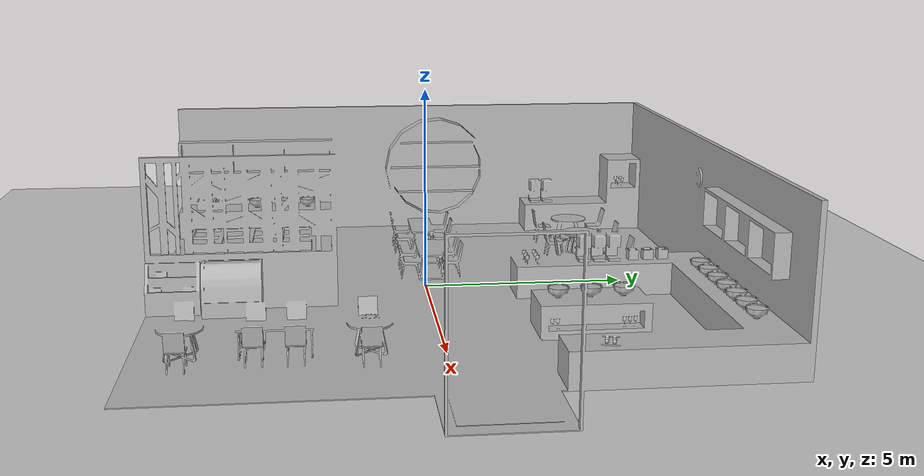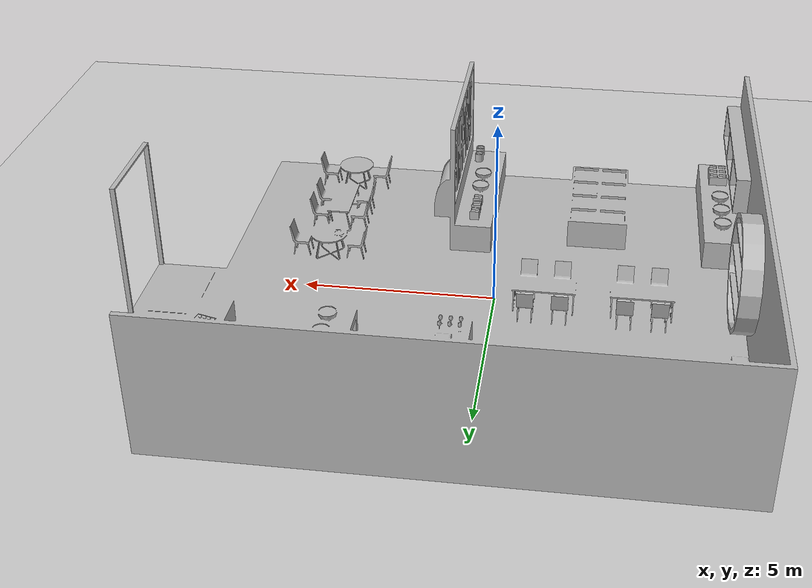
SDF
<sdf version="1.6">
 <world name="default">
  <light name="sun" type="directional">
   <pose>0 0 10 0 -0 0</pose>
   <diffuse>0.8 0.8 0.8 1</diffuse>
   <specular>0.2 0.2 0.2 1</specular>
   <attenuation>
    <range>1000</range>
    <constant>0.9</constant>
    <linear>0.01</linear>
    <quadratic>0.001</quadratic>
   </attenuation>
   <direction>-0.5 0.1 -0.9</direction>
  </light>
  <model name="ground_plane">
   <static>1</static>
   <link name="link">
    <collision name="collision">
     <geometry><plane><normal>0 0 1</normal><size>100 100</size></plane></geometry>
     <surface>
      <contact><collide_bitmask>65535</collide_bitmask></contact>
      <friction><ode><mu>100</mu><mu2>50</mu2></ode></friction>
     </surface>
    </collision>
    <visual name="visual">
     <cast_shadows>0</cast_shadows>
     <geometry><plane><normal>0 0 1</normal><size>100 100</size></plane></geometry>
     <material>
      <script><uri>file://media/materials/scripts/gazebo.material</uri><name>Gazebo/Grey</name></script>
     </material>
    </visual>
   </link>
  </model>
  <physics name="default_physics" default="0" type="ode">
   <real_time_update_rate>200</real_time_update_rate>
   <max_step_size>0.005</max_step_size>
   <real_time_factor>1</real_time_factor>
   <ode>
    <solver>
     <type>quick</type>
     <iters>100</iters>
     <precon_iters>0</precon_iters>
     <sor>1.4</sor>
     <use_dynamic_moi_rescaling>1</use_dynamic_moi_rescaling>
    </solver>
    <constraints>
     <cfm>1e-05</cfm>
     <erp>0.2</erp>
     <contact_max_correcting_vel>2000</contact_max_correcting_vel>
     <contact_surface_layer>0.01</contact_surface_layer>
    </constraints>
   </ode>
  </physics>
  <scene><ambient>0.4 0.4 0.4 1</ambient><background>0.7 0.7 0.7 1</background><shadows>1</shadows></scene>
  <gravity>0 0 -9.8</gravity>
  <magnetic_field>6e-06 2.3e-05 -4.2e-05</magnetic_field>
  <atmosphere type="adiabatic"/>
  <spherical_coordinates>
   <surface_model>EARTH_WGS84</surface_model>
   <latitude_deg>0</latitude_deg>
   <longitude_deg>0</longitude_deg>
   <elevation>0</elevation>
   <heading_deg>0</heading_deg>
  </spherical_coordinates>
  <model name="restaurant">
   <pose>0 0 0.0005 0 -0 0</pose>
   <link name="restaurant_link">
    <visual name="restaurant_visual">
     <pose>0 0 0 1.5708 -0 0</pose>
     <geometry><mesh><uri>model://restaurant/restaurant.obj</uri><scale>25 25 25</scale></mesh></geometry>
     <meta><layer>1</layer></meta>
    </visual>
    <collision name="restaurant_collision">
     <pose>0 0 0 1.5708 -0 0</pose>
     <geometry><mesh><uri>model://restaurant/restaurant.obj</uri><scale>25 25 25</scale></mesh></geometry>
    </collision>
   </link>
   <static>1</static>
  </model>
 </world>
</sdf>
